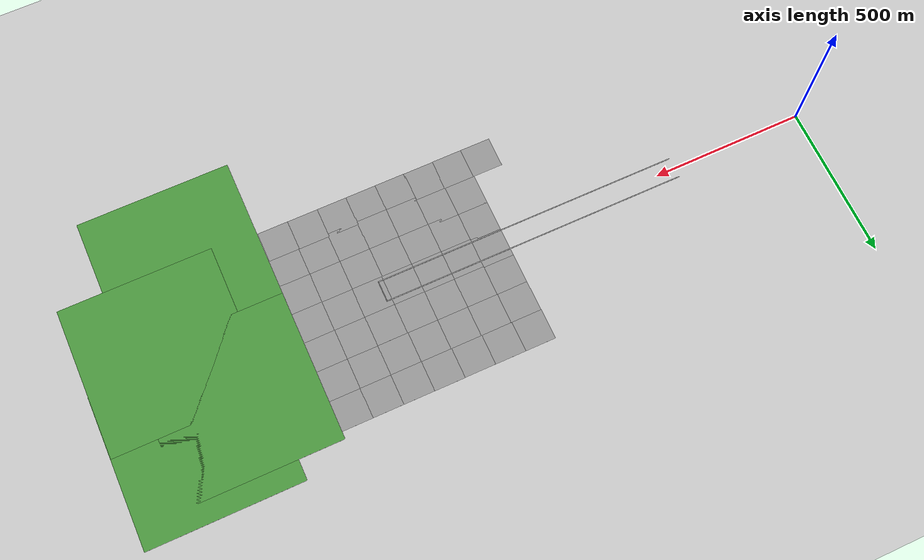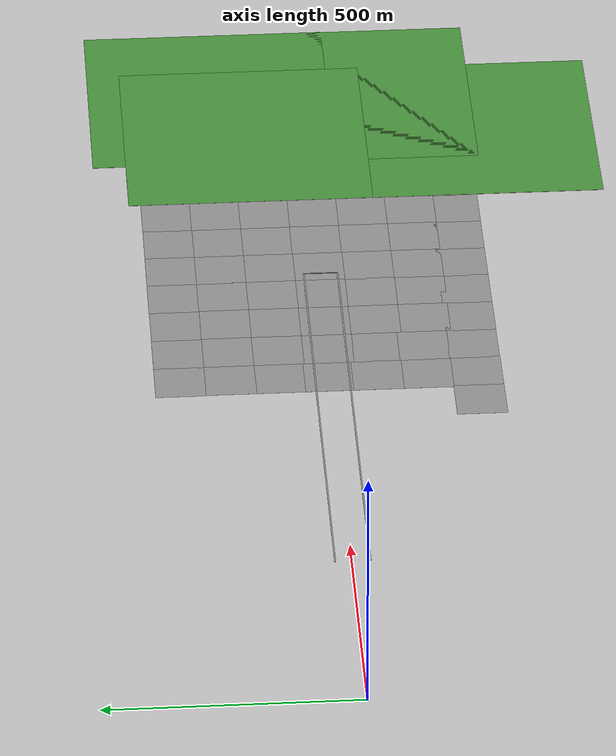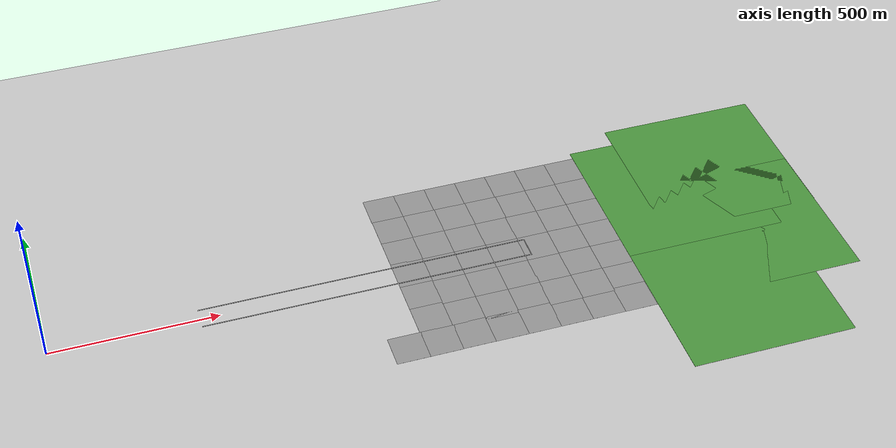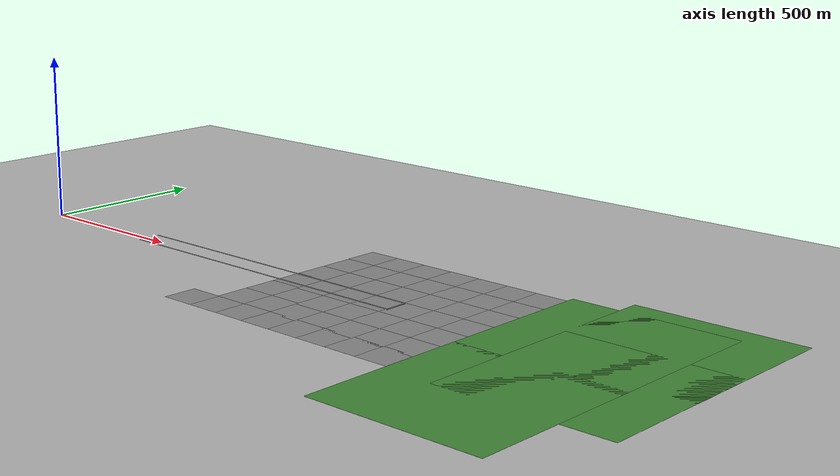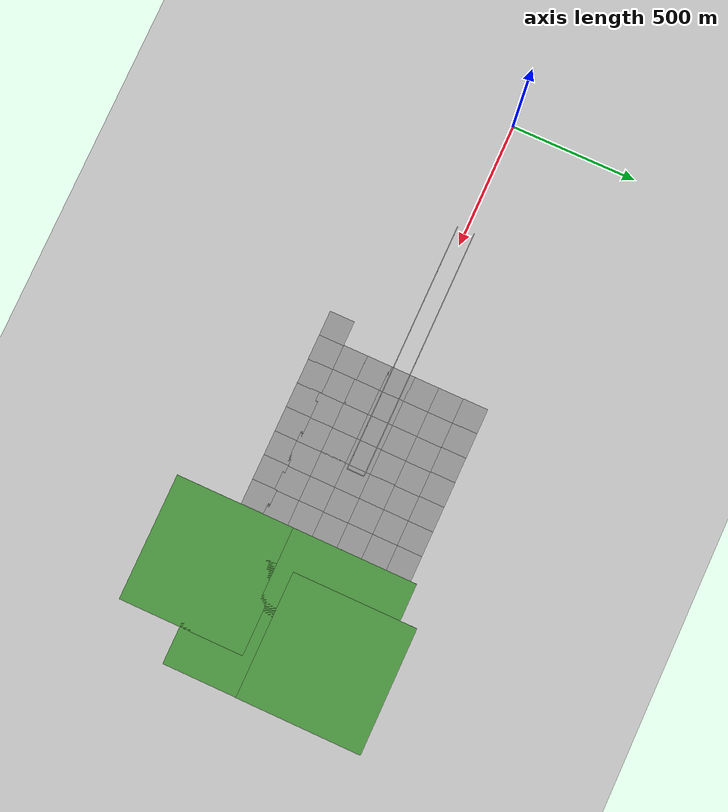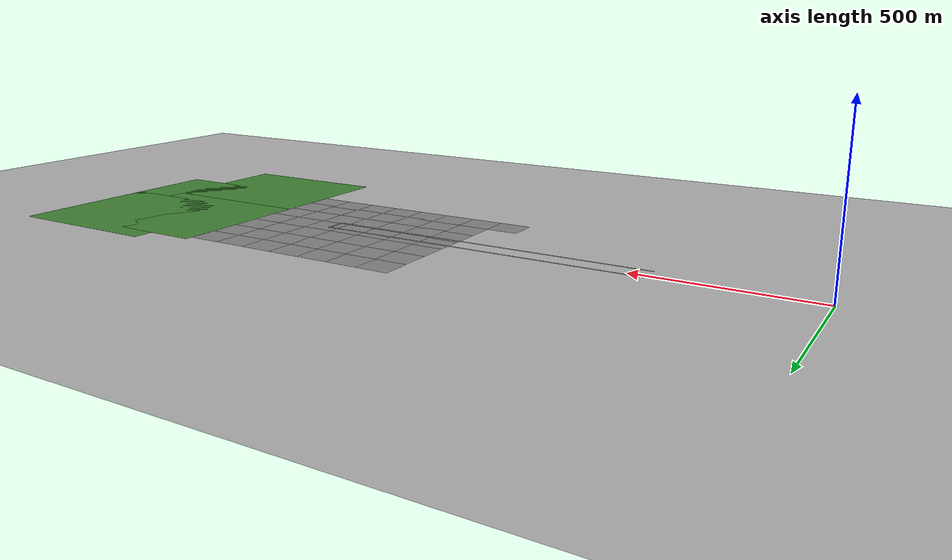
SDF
<sdf version="1.7">
 <world name="default">
  <model name="ground_plane">
   <static>1</static>
   <link name="link">
    <collision name="collision">
     <geometry><plane><normal>0 0 1</normal><size>100 100</size></plane></geometry>
     <surface><friction><ode><mu>100</mu><mu2>50</mu2></ode></friction></surface>
    </collision>
    <visual name="visual">
     <cast_shadows>0</cast_shadows>
     <geometry><plane><normal>0 0 1</normal><size>100 100</size></plane></geometry>
     <material>
      <script><uri>file://media/materials/scripts/gazebo.material</uri><name>Gazebo/Grey</name></script>
     </material>
    </visual>
   </link>
  </model>
  <model name="ground_plane_113">
   <static>1</static>
   <link name="link">
    <collision name="collision">
     <geometry><plane><normal>0 0 1</normal><size>100 100</size></plane></geometry>
     <surface>
      <contact><collide_bitmask>65535</collide_bitmask></contact>
      <friction><ode><mu>100</mu><mu2>50</mu2></ode></friction>
     </surface>
    </collision>
    <visual name="visual">
     <cast_shadows>0</cast_shadows>
     <geometry><plane><normal>0 0 1</normal><size>100 100</size></plane></geometry>
     <material>
      <script><uri>file://media/materials/scripts/gazebo.material</uri><name>Gazebo/Grey</name></script>
     </material>
    </visual>
   </link>
   <pose>1075.34 200.152 0 0 -0 0</pose>
  </model>
  <model name="ground_plane_114">
   <static>1</static>
   <link name="link">
    <collision name="collision">
     <geometry><plane><normal>0 0 1</normal><size>100 100</size></plane></geometry>
     <surface>
      <contact><collide_bitmask>65535</collide_bitmask></contact>
      <friction><ode><mu>100</mu><mu2>50</mu2></ode></friction>
     </surface>
    </collision>
    <visual name="visual">
     <cast_shadows>0</cast_shadows>
     <geometry><plane><normal>0 0 1</normal><size>100 100</size></plane></geometry>
     <material>
      <script><uri>file://media/materials/scripts/gazebo.material</uri><name>Gazebo/Grey</name></script>
     </material>
    </visual>
   </link>
   <pose>1075.56 100.596 0 0 -0 0</pose>
  </model>
  <model name="ground_plane_115">
   <static>1</static>
   <link name="link">
    <collision name="collision">
     <geometry><plane><normal>0 0 1</normal><size>100 100</size></plane></geometry>
     <surface>
      <contact><collide_bitmask>65535</collide_bitmask></contact>
      <friction><ode><mu>100</mu><mu2>50</mu2></ode></friction>
     </surface>
    </collision>
    <visual name="visual">
     <cast_shadows>0</cast_shadows>
     <geometry><plane><normal>0 0 1</normal><size>100 100</size></plane></geometry>
     <material>
      <script><uri>file://media/materials/scripts/gazebo.material</uri><name>Gazebo/Grey</name></script>
     </material>
    </visual>
   </link>
   <pose>1075.42 3.67946 0 0 -0 0</pose>
  </model>
  <model name="ground_plane_116">
   <static>1</static>
   <link name="link">
    <collision name="collision">
     <geometry><plane><normal>0 0 1</normal><size>100 100</size></plane></geometry>
     <surface>
      <contact><collide_bitmask>65535</collide_bitmask></contact>
      <friction><ode><mu>100</mu><mu2>50</mu2></ode></friction>
     </surface>
    </collision>
    <visual name="visual">
     <cast_shadows>0</cast_shadows>
     <geometry><plane><normal>0 0 1</normal><size>100 100</size></plane></geometry>
     <material>
      <script><uri>file://media/materials/scripts/gazebo.material</uri><name>Gazebo/Grey</name></script>
     </material>
    </visual>
   </link>
   <pose>1075.31 -91.5585 0 0 -0 0</pose>
  </model>
  <model name="ground_plane_117">
   <static>1</static>
   <link name="link">
    <collision name="collision">
     <geometry><plane><normal>0 0 1</normal><size>100 100</size></plane></geometry>
     <surface>
      <contact><collide_bitmask>65535</collide_bitmask></contact>
      <friction><ode><mu>100</mu><mu2>50</mu2></ode></friction>
     </surface>
    </collision>
    <visual name="visual">
     <cast_shadows>0</cast_shadows>
     <geometry><plane><normal>0 0 1</normal><size>100 100</size></plane></geometry>
     <material>
      <script><uri>file://media/materials/scripts/gazebo.material</uri><name>Gazebo/Grey</name></script>
     </material>
    </visual>
   </link>
   <pose>1075.46 -189.891 0 0 -0 0</pose>
  </model>
  <model name="ground_plane_119">
   <static>1</static>
   <link name="link">
    <collision name="collision">
     <geometry><plane><normal>0 0 1</normal><size>100 100</size></plane></geometry>
     <surface>
      <contact><collide_bitmask>65535</collide_bitmask></contact>
      <friction><ode><mu>100</mu><mu2>50</mu2></ode></friction>
     </surface>
    </collision>
    <visual name="visual">
     <cast_shadows>0</cast_shadows>
     <geometry><plane><normal>0 0 1</normal><size>100 100</size></plane></geometry>
     <material>
      <script><uri>file://media/materials/scripts/gazebo.material</uri><name>Gazebo/Grey</name></script>
     </material>
    </visual>
   </link>
   <pose>1174.74 200.311 0 0 -0 0</pose>
  </model>
  <model name="ground_plane_120">
   <static>1</static>
   <link name="link">
    <collision name="collision">
     <geometry><plane><normal>0 0 1</normal><size>100 100</size></plane></geometry>
     <surface>
      <contact><collide_bitmask>65535</collide_bitmask></contact>
      <friction><ode><mu>100</mu><mu2>50</mu2></ode></friction>
     </surface>
    </collision>
    <visual name="visual">
     <cast_shadows>0</cast_shadows>
     <geometry><plane><normal>0 0 1</normal><size>100 100</size></plane></geometry>
     <material>
      <script><uri>file://media/materials/scripts/gazebo.material</uri><name>Gazebo/Grey</name></script>
     </material>
    </visual>
   </link>
   <pose>1174.8 100.671 0 0 -0 0</pose>
  </model>
  <model name="ground_plane_121">
   <static>1</static>
   <link name="link">
    <collision name="collision">
     <geometry><plane><normal>0 0 1</normal><size>100 100</size></plane></geometry>
     <surface>
      <contact><collide_bitmask>65535</collide_bitmask></contact>
      <friction><ode><mu>100</mu><mu2>50</mu2></ode></friction>
     </surface>
    </collision>
    <visual name="visual">
     <cast_shadows>0</cast_shadows>
     <geometry><plane><normal>0 0 1</normal><size>100 100</size></plane></geometry>
     <material>
      <script><uri>file://media/materials/scripts/gazebo.material</uri><name>Gazebo/Grey</name></script>
     </material>
    </visual>
   </link>
   <pose>1174.44 0.666128 0 0 -0 0</pose>
  </model>
  <model name="ground_plane_122">
   <static>1</static>
   <link name="link">
    <collision name="collision">
     <geometry><plane><normal>0 0 1</normal><size>100 100</size></plane></geometry>
     <surface>
      <contact><collide_bitmask>65535</collide_bitmask></contact>
      <friction><ode><mu>100</mu><mu2>50</mu2></ode></friction>
     </surface>
    </collision>
    <visual name="visual">
     <cast_shadows>0</cast_shadows>
     <geometry><plane><normal>0 0 1</normal><size>100 100</size></plane></geometry>
     <material>
      <script><uri>file://media/materials/scripts/gazebo.material</uri><name>Gazebo/Grey</name></script>
     </material>
    </visual>
   </link>
   <pose>1174.36 -98.4794 0 0 -0 0</pose>
  </model>
  <model name="ground_plane_123">
   <static>1</static>
   <link name="link">
    <collision name="collision">
     <geometry><plane><normal>0 0 1</normal><size>100 100</size></plane></geometry>
     <surface>
      <contact><collide_bitmask>65535</collide_bitmask></contact>
      <friction><ode><mu>100</mu><mu2>50</mu2></ode></friction>
     </surface>
    </collision>
    <visual name="visual">
     <cast_shadows>0</cast_shadows>
     <geometry><plane><normal>0 0 1</normal><size>100 100</size></plane></geometry>
     <material>
      <script><uri>file://media/materials/scripts/gazebo.material</uri><name>Gazebo/Grey</name></script>
     </material>
    </visual>
   </link>
   <pose>1174.72 -189.769 0 0 -0 0</pose>
  </model>
  <model name="ground_plane_124">
   <static>1</static>
   <link name="link">
    <collision name="collision">
     <geometry><plane><normal>0 0 1</normal><size>100 100</size></plane></geometry>
     <surface>
      <contact><collide_bitmask>65535</collide_bitmask></contact>
      <friction><ode><mu>100</mu><mu2>50</mu2></ode></friction>
     </surface>
    </collision>
    <visual name="visual">
     <cast_shadows>0</cast_shadows>
     <geometry><plane><normal>0 0 1</normal><size>100 100</size></plane></geometry>
     <material>
      <script><uri>file://media/materials/scripts/gazebo.material</uri><name>Gazebo/Grey</name></script>
     </material>
    </visual>
   </link>
   <pose>1274.67 200.295 0 0 -0 0</pose>
  </model>
  <model name="ground_plane_126">
   <static>1</static>
   <link name="link">
    <collision name="collision">
     <geometry><plane><normal>0 0 1</normal><size>100 100</size></plane></geometry>
     <surface>
      <contact><collide_bitmask>65535</collide_bitmask></contact>
      <friction><ode><mu>100</mu><mu2>50</mu2></ode></friction>
     </surface>
    </collision>
    <visual name="visual">
     <cast_shadows>0</cast_shadows>
     <geometry><plane><normal>0 0 1</normal><size>100 100</size></plane></geometry>
     <material>
      <script><uri>file://media/materials/scripts/gazebo.material</uri><name>Gazebo/Grey</name></script>
     </material>
    </visual>
   </link>
   <pose>1274.07 0.921542 0 0 -0 0</pose>
  </model>
  <model name="ground_plane_127">
   <static>1</static>
   <link name="link">
    <collision name="collision">
     <geometry><plane><normal>0 0 1</normal><size>100 100</size></plane></geometry>
     <surface>
      <contact><collide_bitmask>65535</collide_bitmask></contact>
      <friction><ode><mu>100</mu><mu2>50</mu2></ode></friction>
     </surface>
    </collision>
    <visual name="visual">
     <cast_shadows>0</cast_shadows>
     <geometry><plane><normal>0 0 1</normal><size>100 100</size></plane></geometry>
     <material>
      <script><uri>file://media/materials/scripts/gazebo.material</uri><name>Gazebo/Grey</name></script>
     </material>
    </visual>
   </link>
   <pose>1274.24 -98.974 0 0 -0 0</pose>
  </model>
  <model name="ground_plane_128">
   <static>1</static>
   <link name="link">
    <collision name="collision">
     <geometry><plane><normal>0 0 1</normal><size>100 100</size></plane></geometry>
     <surface>
      <contact><collide_bitmask>65535</collide_bitmask></contact>
      <friction><ode><mu>100</mu><mu2>50</mu2></ode></friction>
     </surface>
    </collision>
    <visual name="visual">
     <cast_shadows>0</cast_shadows>
     <geometry><plane><normal>0 0 1</normal><size>100 100</size></plane></geometry>
     <material>
      <script><uri>file://media/materials/scripts/gazebo.material</uri><name>Gazebo/Grey</name></script>
     </material>
    </visual>
   </link>
   <pose>1274.24 -198.31 0 0 -0 0</pose>
  </model>
  <model name="ground_plane_129">
   <static>1</static>
   <link name="link">
    <collision name="collision">
     <geometry><plane><normal>0 0 1</normal><size>100 100</size></plane></geometry>
     <surface>
      <contact><collide_bitmask>65535</collide_bitmask></contact>
      <friction><ode><mu>100</mu><mu2>50</mu2></ode></friction>
     </surface>
    </collision>
    <visual name="visual">
     <cast_shadows>0</cast_shadows>
     <geometry><plane><normal>0 0 1</normal><size>100 100</size></plane></geometry>
     <material>
      <script><uri>file://media/materials/scripts/gazebo.material</uri><name>Gazebo/Grey</name></script>
     </material>
    </visual>
   </link>
   <pose>1374.33 200.305 0 0 -0 0</pose>
  </model>
  <model name="ground_plane_125">
   <static>1</static>
   <link name="link">
    <collision name="collision">
     <geometry><plane><normal>0 0 1</normal><size>100 100</size></plane></geometry>
     <surface>
      <contact><collide_bitmask>65535</collide_bitmask></contact>
      <friction><ode><mu>100</mu><mu2>50</mu2></ode></friction>
     </surface>
    </collision>
    <visual name="visual">
     <cast_shadows>0</cast_shadows>
     <geometry><plane><normal>0 0 1</normal><size>100 100</size></plane></geometry>
     <material>
      <script><uri>file://media/materials/scripts/gazebo.material</uri><name>Gazebo/Grey</name></script>
     </material>
    </visual>
   </link>
   <pose>1274.23 100.358 0 0 -0 0</pose>
  </model>
  <model name="ground_plane_130">
   <static>1</static>
   <link name="link">
    <collision name="collision">
     <geometry><plane><normal>0 0 1</normal><size>100 100</size></plane></geometry>
     <surface>
      <contact><collide_bitmask>65535</collide_bitmask></contact>
      <friction><ode><mu>100</mu><mu2>50</mu2></ode></friction>
     </surface>
    </collision>
    <visual name="visual">
     <cast_shadows>0</cast_shadows>
     <geometry><plane><normal>0 0 1</normal><size>100 100</size></plane></geometry>
     <material>
      <script><uri>file://media/materials/scripts/gazebo.material</uri><name>Gazebo/Grey</name></script>
     </material>
    </visual>
   </link>
   <pose>1373.59 100.322 0 0 -0 0</pose>
  </model>
  <model name="ground_plane_131">
   <static>1</static>
   <link name="link">
    <collision name="collision">
     <geometry><plane><normal>0 0 1</normal><size>100 100</size></plane></geometry>
     <surface>
      <contact><collide_bitmask>65535</collide_bitmask></contact>
      <friction><ode><mu>100</mu><mu2>50</mu2></ode></friction>
     </surface>
    </collision>
    <visual name="visual">
     <cast_shadows>0</cast_shadows>
     <geometry><plane><normal>0 0 1</normal><size>100 100</size></plane></geometry>
     <material>
      <script><uri>file://media/materials/scripts/gazebo.material</uri><name>Gazebo/Grey</name></script>
     </material>
    </visual>
   </link>
   <pose>1373.57 0.586008 0 0 -0 0</pose>
  </model>
  <model name="ground_plane_132">
   <static>1</static>
   <link name="link">
    <collision name="collision">
     <geometry><plane><normal>0 0 1</normal><size>100 100</size></plane></geometry>
     <surface>
      <contact><collide_bitmask>65535</collide_bitmask></contact>
      <friction><ode><mu>100</mu><mu2>50</mu2></ode></friction>
     </surface>
    </collision>
    <visual name="visual">
     <cast_shadows>0</cast_shadows>
     <geometry><plane><normal>0 0 1</normal><size>100 100</size></plane></geometry>
     <material>
      <script><uri>file://media/materials/scripts/gazebo.material</uri><name>Gazebo/Grey</name></script>
     </material>
    </visual>
   </link>
   <pose>1373.74 -99.2938 0 0 -0 0</pose>
  </model>
  <model name="ground_plane_133">
   <static>1</static>
   <link name="link">
    <collision name="collision">
     <geometry><plane><normal>0 0 1</normal><size>100 100</size></plane></geometry>
     <surface>
      <contact><collide_bitmask>65535</collide_bitmask></contact>
      <friction><ode><mu>100</mu><mu2>50</mu2></ode></friction>
     </surface>
    </collision>
    <visual name="visual">
     <cast_shadows>0</cast_shadows>
     <geometry><plane><normal>0 0 1</normal><size>100 100</size></plane></geometry>
     <material>
      <script><uri>file://media/materials/scripts/gazebo.material</uri><name>Gazebo/Grey</name></script>
     </material>
    </visual>
   </link>
   <pose>1373.08 -199.046 0 0 -0 0</pose>
  </model>
  <model name="ground_plane_134">
   <static>1</static>
   <link name="link">
    <collision name="collision">
     <geometry><plane><normal>0 0 1</normal><size>100 100</size></plane></geometry>
     <surface>
      <contact><collide_bitmask>65535</collide_bitmask></contact>
      <friction><ode><mu>100</mu><mu2>50</mu2></ode></friction>
     </surface>
    </collision>
    <visual name="visual">
     <cast_shadows>0</cast_shadows>
     <geometry><plane><normal>0 0 1</normal><size>100 100</size></plane></geometry>
     <material>
      <script><uri>file://media/materials/scripts/gazebo.material</uri><name>Gazebo/Grey</name></script>
     </material>
    </visual>
   </link>
   <pose>1472.04 200.176 0 0 -0 0</pose>
  </model>
  <model name="ground_plane_135">
   <static>1</static>
   <link name="link">
    <collision name="collision">
     <geometry><plane><normal>0 0 1</normal><size>100 100</size></plane></geometry>
     <surface>
      <contact><collide_bitmask>65535</collide_bitmask></contact>
      <friction><ode><mu>100</mu><mu2>50</mu2></ode></friction>
     </surface>
    </collision>
    <visual name="visual">
     <cast_shadows>0</cast_shadows>
     <geometry><plane><normal>0 0 1</normal><size>100 100</size></plane></geometry>
     <material>
      <script><uri>file://media/materials/scripts/gazebo.material</uri><name>Gazebo/Grey</name></script>
     </material>
    </visual>
   </link>
   <pose>1472.08 100.144 0 0 -0 0</pose>
  </model>
  <model name="ground_plane_136">
   <static>1</static>
   <link name="link">
    <collision name="collision">
     <geometry><plane><normal>0 0 1</normal><size>100 100</size></plane></geometry>
     <surface>
      <contact><collide_bitmask>65535</collide_bitmask></contact>
      <friction><ode><mu>100</mu><mu2>50</mu2></ode></friction>
     </surface>
    </collision>
    <visual name="visual">
     <cast_shadows>0</cast_shadows>
     <geometry><plane><normal>0 0 1</normal><size>100 100</size></plane></geometry>
     <material>
      <script><uri>file://media/materials/scripts/gazebo.material</uri><name>Gazebo/Grey</name></script>
     </material>
    </visual>
   </link>
   <pose>1472.1 0.4361 0 0 -0 0</pose>
  </model>
  <model name="ground_plane_137">
   <static>1</static>
   <link name="link">
    <collision name="collision">
     <geometry><plane><normal>0 0 1</normal><size>100 100</size></plane></geometry>
     <surface>
      <contact><collide_bitmask>65535</collide_bitmask></contact>
      <friction><ode><mu>100</mu><mu2>50</mu2></ode></friction>
     </surface>
    </collision>
    <visual name="visual">
     <cast_shadows>0</cast_shadows>
     <geometry><plane><normal>0 0 1</normal><size>100 100</size></plane></geometry>
     <material>
      <script><uri>file://media/materials/scripts/gazebo.material</uri><name>Gazebo/Grey</name></script>
     </material>
    </visual>
   </link>
   <pose>1471.46 -99.4384 0 0 -0 0</pose>
  </model>
  <model name="ground_plane_138">
   <static>1</static>
   <link name="link">
    <collision name="collision">
     <geometry><plane><normal>0 0 1</normal><size>100 100</size></plane></geometry>
     <surface>
      <contact><collide_bitmask>65535</collide_bitmask></contact>
      <friction><ode><mu>100</mu><mu2>50</mu2></ode></friction>
     </surface>
    </collision>
    <visual name="visual">
     <cast_shadows>0</cast_shadows>
     <geometry><plane><normal>0 0 1</normal><size>100 100</size></plane></geometry>
     <material>
      <script><uri>file://media/materials/scripts/gazebo.material</uri><name>Gazebo/Grey</name></script>
     </material>
    </visual>
   </link>
   <pose>1471.61 -198.828 0 0 -0 0</pose>
  </model>
  <model name="ground_plane_139">
   <static>1</static>
   <link name="link">
    <collision name="collision">
     <geometry><plane><normal>0 0 1</normal><size>100 100</size></plane></geometry>
     <surface>
      <contact><collide_bitmask>65535</collide_bitmask></contact>
      <friction><ode><mu>100</mu><mu2>50</mu2></ode></friction>
     </surface>
    </collision>
    <visual name="visual">
     <cast_shadows>0</cast_shadows>
     <geometry><plane><normal>0 0 1</normal><size>100 100</size></plane></geometry>
     <material>
      <script><uri>file://media/materials/scripts/gazebo.material</uri><name>Gazebo/Grey</name></script>
     </material>
    </visual>
   </link>
   <pose>1571.4 200.255 0 0 -0 0</pose>
  </model>
  <model name="ground_plane_140">
   <static>1</static>
   <link name="link">
    <collision name="collision">
     <geometry><plane><normal>0 0 1</normal><size>100 100</size></plane></geometry>
     <surface>
      <contact><collide_bitmask>65535</collide_bitmask></contact>
      <friction><ode><mu>100</mu><mu2>50</mu2></ode></friction>
     </surface>
    </collision>
    <visual name="visual">
     <cast_shadows>0</cast_shadows>
     <geometry><plane><normal>0 0 1</normal><size>100 100</size></plane></geometry>
     <material>
      <script><uri>file://media/materials/scripts/gazebo.material</uri><name>Gazebo/Grey</name></script>
     </material>
    </visual>
   </link>
   <pose>1571.4 100.644 0 0 -0 0</pose>
  </model>
  <model name="ground_plane_141">
   <static>1</static>
   <link name="link">
    <collision name="collision">
     <geometry><plane><normal>0 0 1</normal><size>100 100</size></plane></geometry>
     <surface>
      <contact><collide_bitmask>65535</collide_bitmask></contact>
      <friction><ode><mu>100</mu><mu2>50</mu2></ode></friction>
     </surface>
    </collision>
    <visual name="visual">
     <cast_shadows>0</cast_shadows>
     <geometry><plane><normal>0 0 1</normal><size>100 100</size></plane></geometry>
     <material>
      <script><uri>file://media/materials/scripts/gazebo.material</uri><name>Gazebo/Grey</name></script>
     </material>
    </visual>
   </link>
   <pose>1571.48 1.3357 0 0 -0 0</pose>
  </model>
  <model name="ground_plane_142">
   <static>1</static>
   <link name="link">
    <collision name="collision">
     <geometry><plane><normal>0 0 1</normal><size>100 100</size></plane></geometry>
     <surface>
      <contact><collide_bitmask>65535</collide_bitmask></contact>
      <friction><ode><mu>100</mu><mu2>50</mu2></ode></friction>
     </surface>
    </collision>
    <visual name="visual">
     <cast_shadows>0</cast_shadows>
     <geometry><plane><normal>0 0 1</normal><size>100 100</size></plane></geometry>
     <material>
      <script><uri>file://media/materials/scripts/gazebo.material</uri><name>Gazebo/Grey</name></script>
     </material>
    </visual>
   </link>
   <pose>1571.1 -98.4899 0 0 -0 0</pose>
  </model>
  <model name="ground_plane_143">
   <static>1</static>
   <link name="link">
    <collision name="collision">
     <geometry><plane><normal>0 0 1</normal><size>100 100</size></plane></geometry>
     <surface>
      <contact><collide_bitmask>65535</collide_bitmask></contact>
      <friction><ode><mu>100</mu><mu2>50</mu2></ode></friction>
     </surface>
    </collision>
    <visual name="visual">
     <cast_shadows>0</cast_shadows>
     <geometry><plane><normal>0 0 1</normal><size>100 100</size></plane></geometry>
     <material>
      <script><uri>file://media/materials/scripts/gazebo.material</uri><name>Gazebo/Grey</name></script>
     </material>
    </visual>
   </link>
   <pose>1571.1 -198.521 0 0 -0 0</pose>
  </model>
  <model name="ground_plane_144">
   <static>1</static>
   <link name="link">
    <collision name="collision">
     <geometry><plane><normal>0 0 1</normal><size>100 100</size></plane></geometry>
     <surface>
      <contact><collide_bitmask>65535</collide_bitmask></contact>
      <friction><ode><mu>100</mu><mu2>50</mu2></ode></friction>
     </surface>
    </collision>
    <visual name="visual">
     <cast_shadows>0</cast_shadows>
     <geometry><plane><normal>0 0 1</normal><size>100 100</size></plane></geometry>
     <material>
      <script><uri>file://media/materials/scripts/gazebo.material</uri><name>Gazebo/Grey</name></script>
     </material>
    </visual>
   </link>
   <pose>1670.85 200.417 0 0 -0 0</pose>
  </model>
  <model name="ground_plane_145">
   <static>1</static>
   <link name="link">
    <collision name="collision">
     <geometry><plane><normal>0 0 1</normal><size>100 100</size></plane></geometry>
     <surface>
      <contact><collide_bitmask>65535</collide_bitmask></contact>
      <friction><ode><mu>100</mu><mu2>50</mu2></ode></friction>
     </surface>
    </collision>
    <visual name="visual">
     <cast_shadows>0</cast_shadows>
     <geometry><plane><normal>0 0 1</normal><size>100 100</size></plane></geometry>
     <material>
      <script><uri>file://media/materials/scripts/gazebo.material</uri><name>Gazebo/Grey</name></script>
     </material>
    </visual>
   </link>
   <pose>1670.63 100.47 0 0 -0 0</pose>
  </model>
  <model name="ground_plane_146">
   <static>1</static>
   <link name="link">
    <collision name="collision">
     <geometry><plane><normal>0 0 1</normal><size>100 100</size></plane></geometry>
     <surface>
      <contact><collide_bitmask>65535</collide_bitmask></contact>
      <friction><ode><mu>100</mu><mu2>50</mu2></ode></friction>
     </surface>
    </collision>
    <visual name="visual">
     <cast_shadows>0</cast_shadows>
     <geometry><plane><normal>0 0 1</normal><size>100 100</size></plane></geometry>
     <material>
      <script><uri>file://media/materials/scripts/gazebo.material</uri><name>Gazebo/Grey</name></script>
     </material>
    </visual>
   </link>
   <pose>1671.3 0.614002 0 0 -0 0</pose>
  </model>
  <model name="ground_plane_147">
   <static>1</static>
   <link name="link">
    <collision name="collision">
     <geometry><plane><normal>0 0 1</normal><size>100 100</size></plane></geometry>
     <surface>
      <contact><collide_bitmask>65535</collide_bitmask></contact>
      <friction><ode><mu>100</mu><mu2>50</mu2></ode></friction>
     </surface>
    </collision>
    <visual name="visual">
     <cast_shadows>0</cast_shadows>
     <geometry><plane><normal>0 0 1</normal><size>100 100</size></plane></geometry>
     <material>
      <script><uri>file://media/materials/scripts/gazebo.material</uri><name>Gazebo/Grey</name></script>
     </material>
    </visual>
   </link>
   <pose>1670.39 -99.2737 0 0 -0 0</pose>
  </model>
  <model name="ground_plane_148">
   <static>1</static>
   <link name="link">
    <collision name="collision">
     <geometry><plane><normal>0 0 1</normal><size>100 100</size></plane></geometry>
     <surface>
      <contact><collide_bitmask>65535</collide_bitmask></contact>
      <friction><ode><mu>100</mu><mu2>50</mu2></ode></friction>
     </surface>
    </collision>
    <visual name="visual">
     <cast_shadows>0</cast_shadows>
     <geometry><plane><normal>0 0 1</normal><size>100 100</size></plane></geometry>
     <material>
      <script><uri>file://media/materials/scripts/gazebo.material</uri><name>Gazebo/Grey</name></script>
     </material>
    </visual>
   </link>
   <pose>1670.99 -198.602 0 0 -0 0</pose>
  </model>
  <model name="ground_plane_199">
   <static>1</static>
   <link name="link">
    <collision name="collision">
     <geometry><plane><normal>0 0 1</normal><size>100 100</size></plane></geometry>
     <surface>
      <contact><collide_bitmask>65535</collide_bitmask></contact>
      <friction><ode><mu>100</mu><mu2>50</mu2></ode></friction>
     </surface>
    </collision>
    <visual name="visual">
     <cast_shadows>0</cast_shadows>
     <geometry><plane><normal>0 0 1</normal><size>100 100</size></plane></geometry>
     <material>
      <script><uri>file://media/materials/scripts/gazebo.material</uri><name>Gazebo/Grey</name></script>
     </material>
    </visual>
   </link>
   <pose>1175.91 -288.099 0 0 -0 0</pose>
  </model>
  <model name="ground_plane_200">
   <static>1</static>
   <link name="link">
    <collision name="collision">
     <geometry><plane><normal>0 0 1</normal><size>100 100</size></plane></geometry>
     <surface>
      <contact><collide_bitmask>65535</collide_bitmask></contact>
      <friction><ode><mu>100</mu><mu2>50</mu2></ode></friction>
     </surface>
    </collision>
    <visual name="visual">
     <cast_shadows>0</cast_shadows>
     <geometry><plane><normal>0 0 1</normal><size>100 100</size></plane></geometry>
     <material>
      <script><uri>file://media/materials/scripts/gazebo.material</uri><name>Gazebo/Grey</name></script>
     </material>
    </visual>
   </link>
   <pose>1273.12 -288.639 0 0 -0 0</pose>
  </model>
  <model name="ground_plane_201">
   <static>1</static>
   <link name="link">
    <collision name="collision">
     <geometry><plane><normal>0 0 1</normal><size>100 100</size></plane></geometry>
     <surface>
      <contact><collide_bitmask>65535</collide_bitmask></contact>
      <friction><ode><mu>100</mu><mu2>50</mu2></ode></friction>
     </surface>
    </collision>
    <visual name="visual">
     <cast_shadows>0</cast_shadows>
     <geometry><plane><normal>0 0 1</normal><size>100 100</size></plane></geometry>
     <material>
      <script><uri>file://media/materials/scripts/gazebo.material</uri><name>Gazebo/Grey</name></script>
     </material>
    </visual>
   </link>
   <pose>1372.5 -288.639 0 0 -0 0</pose>
  </model>
  <model name="ground_plane_202">
   <static>1</static>
   <link name="link">
    <collision name="collision">
     <geometry><plane><normal>0 0 1</normal><size>100 100</size></plane></geometry>
     <surface>
      <contact><collide_bitmask>65535</collide_bitmask></contact>
      <friction><ode><mu>100</mu><mu2>50</mu2></ode></friction>
     </surface>
    </collision>
    <visual name="visual">
     <cast_shadows>0</cast_shadows>
     <geometry><plane><normal>0 0 1</normal><size>100 100</size></plane></geometry>
     <material>
      <script><uri>file://media/materials/scripts/gazebo.material</uri><name>Gazebo/Grey</name></script>
     </material>
    </visual>
   </link>
   <pose>1470.79 -288.639 0 0 -0 0</pose>
  </model>
  <model name="ground_plane_203">
   <static>1</static>
   <link name="link">
    <collision name="collision">
     <geometry><plane><normal>0 0 1</normal><size>100 100</size></plane></geometry>
     <surface>
      <contact><collide_bitmask>65535</collide_bitmask></contact>
      <friction><ode><mu>100</mu><mu2>50</mu2></ode></friction>
     </surface>
    </collision>
    <visual name="visual">
     <cast_shadows>0</cast_shadows>
     <geometry><plane><normal>0 0 1</normal><size>100 100</size></plane></geometry>
     <material>
      <script><uri>file://media/materials/scripts/gazebo.material</uri><name>Gazebo/Grey</name></script>
     </material>
    </visual>
   </link>
   <pose>1569.09 -288.639 0 0 -0 0</pose>
  </model>
  <model name="ground_plane_204">
   <static>1</static>
   <link name="link">
    <collision name="collision">
     <geometry><plane><normal>0 0 1</normal><size>100 100</size></plane></geometry>
     <surface>
      <contact><collide_bitmask>65535</collide_bitmask></contact>
      <friction><ode><mu>100</mu><mu2>50</mu2></ode></friction>
     </surface>
    </collision>
    <visual name="visual">
     <cast_shadows>0</cast_shadows>
     <geometry><plane><normal>0 0 1</normal><size>100 100</size></plane></geometry>
     <material>
      <script><uri>file://media/materials/scripts/gazebo.material</uri><name>Gazebo/Grey</name></script>
     </material>
    </visual>
   </link>
   <pose>1668.74 -288.97 0 0 -0 0</pose>
  </model>
  <model name="ground_plane_205">
   <static>1</static>
   <link name="link">
    <collision name="collision">
     <geometry><plane><normal>0 0 1</normal><size>100 100</size></plane></geometry>
     <surface>
      <contact><collide_bitmask>65535</collide_bitmask></contact>
      <friction><ode><mu>100</mu><mu2>50</mu2></ode></friction>
     </surface>
    </collision>
    <visual name="visual">
     <cast_shadows>0</cast_shadows>
     <geometry><plane><normal>0 0 1</normal><size>100 100</size></plane></geometry>
     <material>
      <script><uri>file://media/materials/scripts/gazebo.material</uri><name>Gazebo/Grey</name></script>
     </material>
    </visual>
   </link>
   <pose>1078 -288.777 0 0 -0 0</pose>
  </model>
  <model name="ground_plane_206">
   <static>1</static>
   <link name="link">
    <collision name="collision">
     <geometry><plane><normal>0 0 1</normal><size>100 100</size></plane></geometry>
     <surface>
      <contact><collide_bitmask>65535</collide_bitmask></contact>
      <friction><ode><mu>100</mu><mu2>50</mu2></ode></friction>
     </surface>
    </collision>
    <visual name="visual">
     <cast_shadows>0</cast_shadows>
     <geometry><plane><normal>0 0 1</normal><size>100 100</size></plane></geometry>
     <material>
      <script><uri>file://media/materials/scripts/gazebo.material</uri><name>Gazebo/Grey</name></script>
     </material>
    </visual>
   </link>
   <pose>979.198 -288.826 0 0 -0 0</pose>
  </model>
  <model name="ground_plane_239">
   <static>1</static>
   <link name="link">
    <collision name="collision">
     <geometry><plane><normal>0 0 1</normal><size>100 100</size></plane></geometry>
     <surface>
      <contact><collide_bitmask>65535</collide_bitmask></contact>
      <friction><ode><mu>100</mu><mu2>50</mu2></ode></friction>
     </surface>
    </collision>
    <visual name="visual">
     <cast_shadows>0</cast_shadows>
     <geometry><plane><normal>0 0 1</normal><size>100 100</size></plane></geometry>
     <material>
      <script><uri>file://media/materials/scripts/gazebo.material</uri><name>Gazebo/Grey</name></script>
     </material>
    </visual>
   </link>
   <pose>1670.8 299.75 0 0 -0 0</pose>
  </model>
  <model name="ground_plane_240">
   <static>1</static>
   <link name="link">
    <collision name="collision">
     <geometry><plane><normal>0 0 1</normal><size>100 100</size></plane></geometry>
     <surface>
      <contact><collide_bitmask>65535</collide_bitmask></contact>
      <friction><ode><mu>100</mu><mu2>50</mu2></ode></friction>
     </surface>
    </collision>
    <visual name="visual">
     <cast_shadows>0</cast_shadows>
     <geometry><plane><normal>0 0 1</normal><size>100 100</size></plane></geometry>
     <material>
      <script><uri>file://media/materials/scripts/gazebo.material</uri><name>Gazebo/Grey</name></script>
     </material>
    </visual>
   </link>
   <pose>1571.94 299.707 0 0 -0 0</pose>
  </model>
  <model name="ground_plane_241">
   <static>1</static>
   <link name="link">
    <collision name="collision">
     <geometry><plane><normal>0 0 1</normal><size>100 100</size></plane></geometry>
     <surface>
      <contact><collide_bitmask>65535</collide_bitmask></contact>
      <friction><ode><mu>100</mu><mu2>50</mu2></ode></friction>
     </surface>
    </collision>
    <visual name="visual">
     <cast_shadows>0</cast_shadows>
     <geometry><plane><normal>0 0 1</normal><size>100 100</size></plane></geometry>
     <material>
      <script><uri>file://media/materials/scripts/gazebo.material</uri><name>Gazebo/Grey</name></script>
     </material>
    </visual>
   </link>
   <pose>1472.05 299.882 0 0 -0 0</pose>
  </model>
  <model name="ground_plane_242">
   <static>1</static>
   <link name="link">
    <collision name="collision">
     <geometry><plane><normal>0 0 1</normal><size>100 100</size></plane></geometry>
     <surface>
      <contact><collide_bitmask>65535</collide_bitmask></contact>
      <friction><ode><mu>100</mu><mu2>50</mu2></ode></friction>
     </surface>
    </collision>
    <visual name="visual">
     <cast_shadows>0</cast_shadows>
     <geometry><plane><normal>0 0 1</normal><size>100 100</size></plane></geometry>
     <material>
      <script><uri>file://media/materials/scripts/gazebo.material</uri><name>Gazebo/Grey</name></script>
     </material>
    </visual>
   </link>
   <pose>1372.37 300.229 0 0 -0 0</pose>
  </model>
  <model name="ground_plane_243">
   <static>1</static>
   <link name="link">
    <collision name="collision">
     <geometry><plane><normal>0 0 1</normal><size>100 100</size></plane></geometry>
     <surface>
      <contact><collide_bitmask>65535</collide_bitmask></contact>
      <friction><ode><mu>100</mu><mu2>50</mu2></ode></friction>
     </surface>
    </collision>
    <visual name="visual">
     <cast_shadows>0</cast_shadows>
     <geometry><plane><normal>0 0 1</normal><size>100 100</size></plane></geometry>
     <material>
      <script><uri>file://media/materials/scripts/gazebo.material</uri><name>Gazebo/Grey</name></script>
     </material>
    </visual>
   </link>
   <pose>1272.73 299.708 0 0 -0 0</pose>
  </model>
  <model name="ground_plane_244">
   <static>1</static>
   <link name="link">
    <collision name="collision">
     <geometry><plane><normal>0 0 1</normal><size>100 100</size></plane></geometry>
     <surface>
      <contact><collide_bitmask>65535</collide_bitmask></contact>
      <friction><ode><mu>100</mu><mu2>50</mu2></ode></friction>
     </surface>
    </collision>
    <visual name="visual">
     <cast_shadows>0</cast_shadows>
     <geometry><plane><normal>0 0 1</normal><size>100 100</size></plane></geometry>
     <material>
      <script><uri>file://media/materials/scripts/gazebo.material</uri><name>Gazebo/Grey</name></script>
     </material>
    </visual>
   </link>
   <pose>1172.92 300.035 0 0 -0 0</pose>
  </model>
  <model name="ground_plane_245">
   <static>1</static>
   <link name="link">
    <collision name="collision">
     <geometry><plane><normal>0 0 1</normal><size>100 100</size></plane></geometry>
     <surface>
      <contact><collide_bitmask>65535</collide_bitmask></contact>
      <friction><ode><mu>100</mu><mu2>50</mu2></ode></friction>
     </surface>
    </collision>
    <visual name="visual">
     <cast_shadows>0</cast_shadows>
     <geometry><plane><normal>0 0 1</normal><size>100 100</size></plane></geometry>
     <material>
      <script><uri>file://media/materials/scripts/gazebo.material</uri><name>Gazebo/Grey</name></script>
     </material>
    </visual>
   </link>
   <pose>1074.27 300.121 0 0 -0 0</pose>
  </model>
  <model name="runway_side_1km_thin_clone_3">
   <link name="Wall_0">
    <pose>-361.004 -1.08248 0 0 -0 3.14159</pose>
    <inertial>
     <inertia><ixx>0</ixx><ixy>0</ixy><ixz>0</ixz><iyy>0</iyy><iyz>0</iyz><izz>0</izz></inertia>
     <mass>0</mass>
    </inertial>
    <visual name="Wall_0_Visual">
     <pose>0 0 1.25 0 -0 0</pose>
     <geometry><box><size>1000 2.8594 1</size></box></geometry>
     <material>
      <script><uri>file://media/materials/scripts/gazebo.material</uri><name>Gazebo/Grey</name></script>
      <ambient>1 1 1 1</ambient>
      <shader type="pixel"/>
     </material>
     <meta><layer>0</layer></meta>
    </visual>
    <collision name="Wall_0_Collision">
     <pose>0 0 1.25 0 -0 0</pose>
     <geometry><box><size>1000 2.8594 1</size></box></geometry>
     <surface>
      <friction>
       <ode><mu>1</mu><mu2>1</mu2><fdir1>0 0 0</fdir1><slip1>0</slip1><slip2>0</slip2></ode>
       <torsional>
        <coefficient>1</coefficient>
        <patch_radius>0</patch_radius>
        <surface_radius>0</surface_radius>
        <use_patch_radius>1</use_patch_radius>
        <ode><slip>0</slip></ode>
       </torsional>
      </friction>
      <bounce><restitution_coefficient>0</restitution_coefficient><threshold>1e+06</threshold></bounce>
      <contact>
       <collide_without_contact>0</collide_without_contact>
       <collide_without_contact_bitmask>1</collide_without_contact_bitmask>
       <collide_bitmask>1</collide_bitmask>
       <ode>
        <soft_cfm>0</soft_cfm>
        <soft_erp>0.2</soft_erp>
        <kp>1e+13</kp>
        <kd>1</kd>
        <max_vel>0.01</max_vel>
        <min_depth>0</min_depth>
       </ode>
       <bullet>
        <split_impulse>1</split_impulse>
        <split_impulse_penetration_threshold>-0.01</split_impulse_penetration_threshold>
        <soft_cfm>0</soft_cfm>
        <soft_erp>0.2</soft_erp>
        <kp>1e+13</kp>
        <kd>1</kd>
       </bullet>
      </contact>
     </surface>
    </collision>
   </link>
   <static>1</static>
   <pose>1300 34 5 0 -0 0</pose>
  </model>
  <model name="runway_side_1km_thin_clone_4">
   <link name="Wall_0">
    <pose>-361.004 -1.08248 0 0 -0 3.14159</pose>
    <inertial>
     <inertia><ixx>0</ixx><ixy>0</ixy><ixz>0</ixz><iyy>0</iyy><iyz>0</iyz><izz>0</izz></inertia>
     <mass>0</mass>
    </inertial>
    <visual name="Wall_0_Visual">
     <pose>0 0 1.25 0 -0 0</pose>
     <geometry><box><size>1000 2.8594 1</size></box></geometry>
     <material>
      <script><uri>file://media/materials/scripts/gazebo.material</uri><name>Gazebo/Grey</name></script>
      <ambient>1 1 1 1</ambient>
      <shader type="pixel"/>
     </material>
     <meta><layer>0</layer></meta>
    </visual>
    <collision name="Wall_0_Collision">
     <pose>0 0 1.25 0 -0 0</pose>
     <geometry><box><size>1000 2.8594 1</size></box></geometry>
     <surface>
      <friction>
       <ode><mu>1</mu><mu2>1</mu2><fdir1>0 0 0</fdir1><slip1>0</slip1><slip2>0</slip2></ode>
       <torsional>
        <coefficient>1</coefficient>
        <patch_radius>0</patch_radius>
        <surface_radius>0</surface_radius>
        <use_patch_radius>1</use_patch_radius>
        <ode><slip>0</slip></ode>
       </torsional>
      </friction>
      <bounce><restitution_coefficient>0</restitution_coefficient><threshold>1e+06</threshold></bounce>
      <contact>
       <collide_without_contact>0</collide_without_contact>
       <collide_without_contact_bitmask>1</collide_without_contact_bitmask>
       <collide_bitmask>1</collide_bitmask>
       <ode>
        <soft_cfm>0</soft_cfm>
        <soft_erp>0.2</soft_erp>
        <kp>1e+13</kp>
        <kd>1</kd>
        <max_vel>0.01</max_vel>
        <min_depth>0</min_depth>
       </ode>
       <bullet>
        <split_impulse>1</split_impulse>
        <split_impulse_penetration_threshold>-0.01</split_impulse_penetration_threshold>
        <soft_cfm>0</soft_cfm>
        <soft_erp>0.2</soft_erp>
        <kp>1e+13</kp>
        <kd>1</kd>
       </bullet>
      </contact>
     </surface>
    </collision>
   </link>
   <static>1</static>
   <pose>1300 -34 5 0 -0 0</pose>
  </model>
  <model name="runway_segment_6m_1_clone">
   <link name="Wall_0">
    <pose>-2.17155 0.791255 0 0 0 -0.022056</pose>
    <inertial>
     <inertia><ixx>0</ixx><ixy>0</ixy><ixz>0</ixz><iyy>0</iyy><iyz>0</iyz><izz>0</izz></inertia>
     <mass>0</mass>
    </inertial>
    <visual name="Wall_0_Visual">
     <pose>0 0 0.05 0 -0 0</pose>
     <geometry><box><size>71.2304 2.14811 1</size></box></geometry>
     <material>
      <script><uri>file://media/materials/scripts/gazebo.material</uri><name>Gazebo/Grey</name></script>
      <ambient>1 1 1 1</ambient>
      <shader type="pixel"/>
     </material>
     <meta><layer>0</layer></meta>
    </visual>
    <collision name="Wall_0_Collision">
     <pose>0 0 0.05 0 -0 0</pose>
     <geometry><box><size>71.2304 2.14811 1</size></box></geometry>
     <surface>
      <friction>
       <ode><mu>1</mu><mu2>1</mu2><fdir1>0 0 0</fdir1><slip1>0</slip1><slip2>0</slip2></ode>
       <torsional>
        <coefficient>1</coefficient>
        <patch_radius>0</patch_radius>
        <surface_radius>0</surface_radius>
        <use_patch_radius>1</use_patch_radius>
        <ode><slip>0</slip></ode>
       </torsional>
      </friction>
      <bounce><restitution_coefficient>0</restitution_coefficient><threshold>1e+06</threshold></bounce>
      <contact>
       <collide_without_contact>0</collide_without_contact>
       <collide_without_contact_bitmask>1</collide_without_contact_bitmask>
       <collide_bitmask>1</collide_bitmask>
       <ode>
        <soft_cfm>0</soft_cfm>
        <soft_erp>0.2</soft_erp>
        <kp>1e+13</kp>
        <kd>1</kd>
        <max_vel>0.01</max_vel>
        <min_depth>0</min_depth>
       </ode>
       <bullet>
        <split_impulse>1</split_impulse>
        <split_impulse_penetration_threshold>-0.01</split_impulse_penetration_threshold>
        <soft_cfm>0</soft_cfm>
        <soft_erp>0.2</soft_erp>
        <kp>1e+13</kp>
        <kd>1</kd>
       </bullet>
      </contact>
     </surface>
    </collision>
   </link>
   <static>1</static>
   <pose>1439.33 -3.34865 5 0 0 -1.54857</pose>
  </model>
  <model name="grassland_6">
   <link name="body">
    <collision name="geom">
     <geometry><plane><normal>0 0 1</normal><size>1 1</size></plane></geometry>
     <surface><friction><ode><mu>100</mu><mu2>50</mu2></ode></friction></surface>
    </collision>
    <visual name="visual">
     <cast_shadows>0</cast_shadows>
     <geometry><plane><normal>0 0 1</normal><size>500 500</size></plane></geometry>
     <material>
      <script><uri>file://media/materials/scripts/gazebo.material</uri><name>Gazebo/Grass</name></script>
     </material>
    </visual>
   </link>
   <static>1</static>
   <pose>1970.04 123.94 0 0 -0 0</pose>
  </model>
  <model name="grassland_7">
   <link name="body">
    <collision name="geom">
     <geometry><plane><normal>0 0 1</normal><size>1 1</size></plane></geometry>
     <surface><friction><ode><mu>100</mu><mu2>50</mu2></ode></friction></surface>
    </collision>
    <visual name="visual">
     <cast_shadows>0</cast_shadows>
     <geometry><plane><normal>0 0 1</normal><size>500 500</size></plane></geometry>
     <material>
      <script><uri>file://media/materials/scripts/gazebo.material</uri><name>Gazebo/Grass</name></script>
     </material>
    </visual>
   </link>
   <static>1</static>
   <pose>1969.84 -349.364 0 0 -0 0</pose>
  </model>
  <model name="grassland_8">
   <link name="body">
    <collision name="geom">
     <geometry><plane><normal>0 0 1</normal><size>1 1</size></plane></geometry>
     <surface><friction><ode><mu>100</mu><mu2>50</mu2></ode></friction></surface>
    </collision>
    <visual name="visual">
     <cast_shadows>0</cast_shadows>
     <geometry><plane><normal>0 0 1</normal><size>500 500</size></plane></geometry>
     <material>
      <script><uri>file://media/materials/scripts/gazebo.material</uri><name>Gazebo/Grass</name></script>
     </material>
    </visual>
   </link>
   <static>1</static>
   <pose>2115.93 -103.643 0 0 -0 0</pose>
  </model>
  <model name="grassland_9">
   <link name="body">
    <collision name="geom">
     <geometry><plane><normal>0 0 1</normal><size>1 1</size></plane></geometry>
     <surface><friction><ode><mu>100</mu><mu2>50</mu2></ode></friction></surface>
    </collision>
    <visual name="visual">
     <cast_shadows>0</cast_shadows>
     <geometry><plane><normal>0 0 1</normal><size>500 500</size></plane></geometry>
     <material>
      <script><uri>file://media/materials/scripts/gazebo.material</uri><name>Gazebo/Grass</name></script>
     </material>
    </visual>
   </link>
   <static>1</static>
   <pose>2116.86 191.439 0 0 -0 0</pose>
  </model>
 </world>
</sdf>
